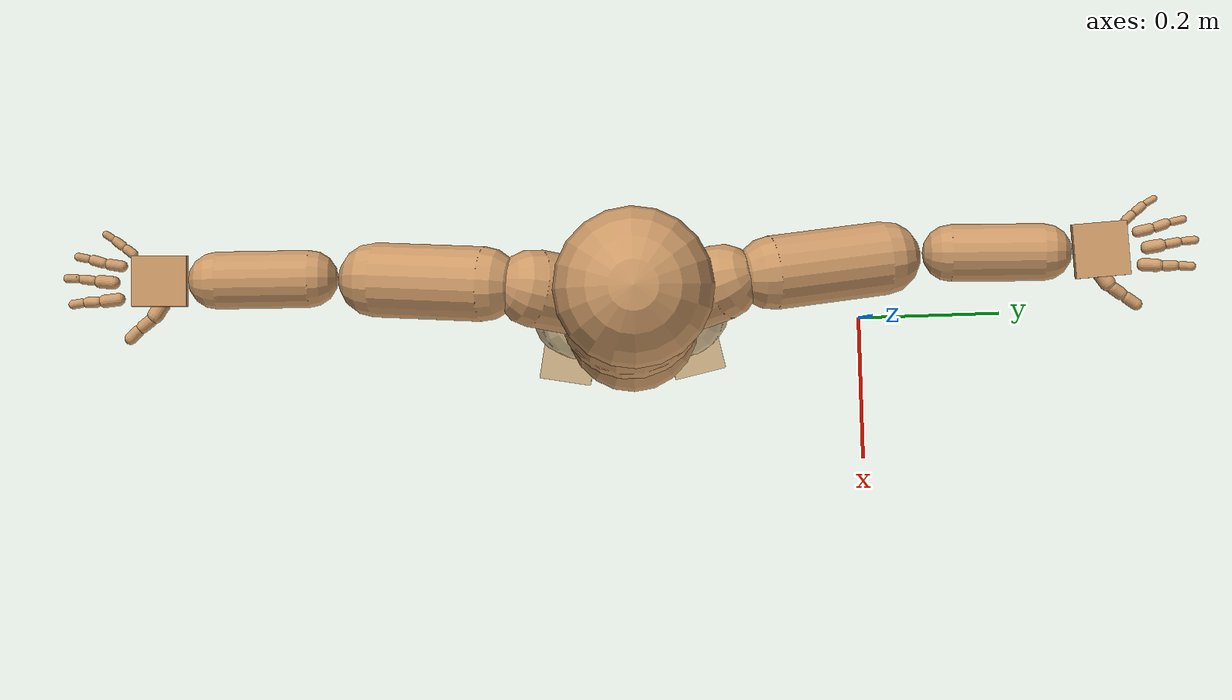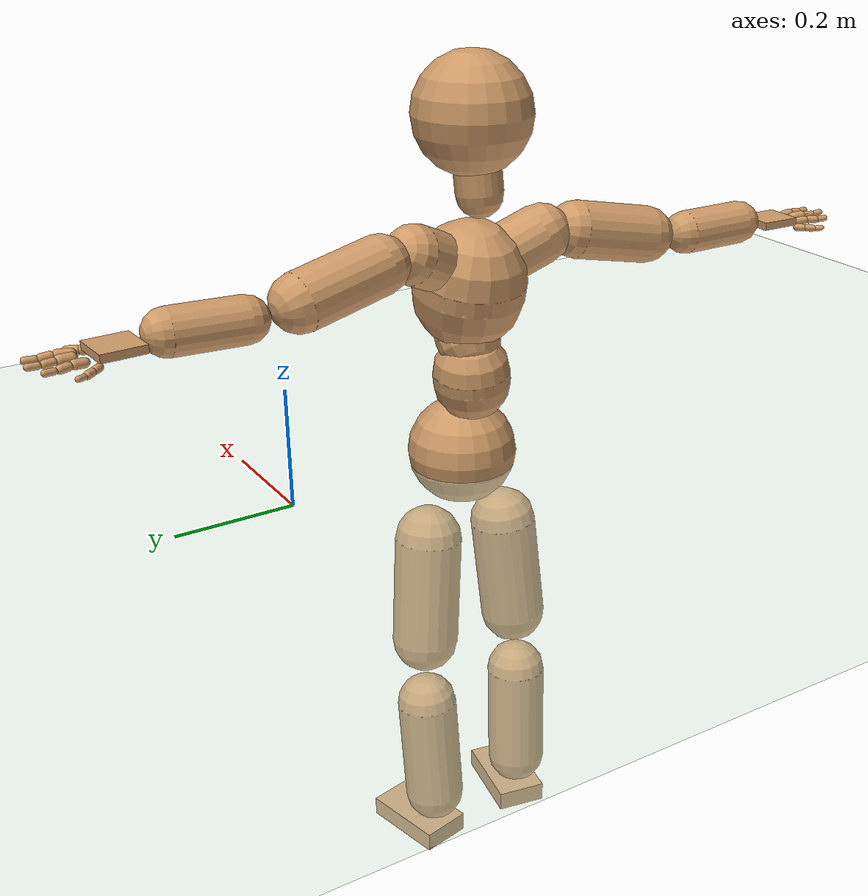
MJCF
<mujoco model="humanoid">
  <compiler coordinate="local" angle="radian"/>
  <default>
    <joint damping="0.0" armature="0.01" stiffness="0.0" limited="true"/>
    <geom conaffinity="1" condim="3" contype="7" margin="0.001" rgba="0.8 0.6 .4 1"/>
  </default>
  <asset>
    <texture type="skybox" builtin="gradient" rgb1=".4 .5 .6" rgb2="0 0 0" width="100" height="100"/>
    <texture builtin="flat" height="1278" mark="cross" markrgb="1 1 1" name="texgeom" random="0.01" rgb1="0.8 0.6 0.4" rgb2="0.8 0.6 0.4" type="cube" width="127"/>
    <texture builtin="checker" height="100" name="texplane" rgb1="0 0 0" rgb2="0.8 0.8 0.8" type="2d" width="100"/>
    <material name="MatPlane" reflectance="0.5" shininess="1" specular="1" texrepeat="60 60" texture="texplane"/>
    <material name="geom" texture="texgeom" texuniform="true"/>
  </asset>
  <worldbody>
    <light cutoff="100" diffuse="1 1 1" dir="-0 0 -1.3" directional="true" exponent="1" pos="0 0 1.3" specular=".1 .1 .1"/>
    <geom conaffinity="1" condim="3" name="floor" pos="0 0 0" rgba="0.8 0.9 0.8 1" size="100 100 .2" type="plane" material="MatPlane"/>
    <body name="Pelvis" pos="0.0006 -0.3213 0.0212">
      <freejoint name="Pelvis"/>
      <geom type="sphere" contype="1" conaffinity="1" density="500" size="0.0931" pos="0.0000 0.0000 0.0000" name="Pelvis"/>
      <body name="L_Hip" pos="-0.0087 0.0716 -0.0823">
        <joint name="L_Hip_x" type="hinge" pos="0 0 0" axis="1 0 0" stiffness="800" damping="80" armature="0.02" range="-180.0000 180.0000"/>
        <joint name="L_Hip_y" type="hinge" pos="0 0 0" axis="0 1 0" stiffness="800" damping="80" armature="0.02" range="-180.0000 180.0000"/>
        <joint name="L_Hip_z" type="hinge" pos="0 0 0" axis="0 0 1" stiffness="800" damping="80" armature="0.02" range="-180.0000 180.0000"/>
        <geom type="capsule" contype="1" conaffinity="1" density="500" fromto="-0.0033 0.0054 -0.0645 -0.0133 0.0216 -0.2578" size="0.0577" name="L_Hip"/>
        <body name="L_Knee" pos="-0.0166 0.027 -0.3223">
          <joint name="L_Knee_x" type="hinge" pos="0 0 0" axis="1 0 0" stiffness="800" damping="80" armature="0.02" range="-180.0000 180.0000"/>
          <joint name="L_Knee_y" type="hinge" pos="0 0 0" axis="0 1 0" stiffness="800" damping="80" armature="0.02" range="-180.0000 180.0000"/>
          <joint name="L_Knee_z" type="hinge" pos="0 0 0" axis="0 0 1" stiffness="800" damping="80" armature="0.02" range="-180.0000 180.0000"/>
          <geom type="capsule" contype="1" conaffinity="1" density="500" fromto="-0.0036 -0.0019 -0.0651 -0.0145 -0.0078 -0.2602" size="0.0527" name="L_Knee"/>
          <body name="L_Ankle" pos="-0.0182 -0.0097 -0.3253">
            <joint name="L_Ankle_x" type="hinge" pos="0 0 0" axis="1 0 0" stiffness="800" damping="80" armature="0.02" range="-180.0000 180.0000"/>
            <joint name="L_Ankle_y" type="hinge" pos="0 0 0" axis="0 1 0" stiffness="800" damping="80" armature="0.02" range="-180.0000 180.0000"/>
            <joint name="L_Ankle_z" type="hinge" pos="0 0 0" axis="0 0 1" stiffness="800" damping="80" armature="0.02" range="-180.0000 180.0000"/>
            <geom type="box" contype="1" conaffinity="1" density="500" pos="0.0485 0.0103 -0.0186" size="0.076 0.0442 0.0177" quat="0.9945 0.0000 0.0000 0.1049" name="L_Ankle"/>
            <body name="L_Toe" pos="0.097 0.0207 -0.0372">
              <joint name="L_Toe_x" type="hinge" pos="0 0 0" axis="1 0 0" stiffness="500" damping="50" armature="0.02" range="-180.0000 180.0000"/>
              <joint name="L_Toe_y" type="hinge" pos="0 0 0" axis="0 1 0" stiffness="500" damping="50" armature="0.02" range="-180.0000 180.0000"/>
              <joint name="L_Toe_z" type="hinge" pos="0 0 0" axis="0 0 1" stiffness="500" damping="50" armature="0.02" range="-180.0000 180.0000"/>
              <geom type="box" contype="1" conaffinity="1" density="500" pos="0.0000 0.0000 0.0202" size="0.0009 0.0022 0.001" quat="0.9937 0.0000 0.0000 0.1124" name="L_Toe"/>
            </body>
          </body>
        </body>
      </body>
      <body name="R_Hip" pos="-0.01 -0.0705 -0.0883">
        <joint name="R_Hip_x" type="hinge" pos="0 0 0" axis="1 0 0" stiffness="800" damping="80" armature="0.02" range="-180.0000 180.0000"/>
        <joint name="R_Hip_y" type="hinge" pos="0 0 0" axis="0 1 0" stiffness="800" damping="80" armature="0.02" range="-180.0000 180.0000"/>
        <joint name="R_Hip_z" type="hinge" pos="0 0 0" axis="0 0 1" stiffness="800" damping="80" armature="0.02" range="-180.0000 180.0000"/>
        <geom type="capsule" contype="1" conaffinity="1" density="500" fromto="-0.0021 -0.0062 -0.0636 -0.0086 -0.0249 -0.2546" size="0.0575" name="R_Hip"/>
        <body name="R_Knee" pos="-0.0107 -0.0312 -0.3182">
          <joint name="R_Knee_x" type="hinge" pos="0 0 0" axis="1 0 0" stiffness="800" damping="80" armature="0.02" range="-180.0000 180.0000"/>
          <joint name="R_Knee_y" type="hinge" pos="0 0 0" axis="0 1 0" stiffness="800" damping="80" armature="0.02" range="-180.0000 180.0000"/>
          <joint name="R_Knee_z" type="hinge" pos="0 0 0" axis="0 0 1" stiffness="800" damping="80" armature="0.02" range="-180.0000 180.0000"/>
          <geom type="capsule" contype="1" conaffinity="1" density="500" fromto="-0.0029 0.0011 -0.0635 -0.0117 0.0044 -0.2539" size="0.0527" name="R_Knee"/>
          <body name="R_Ankle" pos="-0.0146 0.0055 -0.3173">
            <joint name="R_Ankle_x" type="hinge" pos="0 0 0" axis="1 0 0" stiffness="800" damping="80" armature="0.02" range="-180.0000 180.0000"/>
            <joint name="R_Ankle_y" type="hinge" pos="0 0 0" axis="0 1 0" stiffness="800" damping="80" armature="0.02" range="-180.0000 180.0000"/>
            <joint name="R_Ankle_z" type="hinge" pos="0 0 0" axis="0 0 1" stiffness="800" damping="80" armature="0.02" range="-180.0000 180.0000"/>
            <geom type="box" contype="1" conaffinity="1" density="500" pos="0.0455 -0.0085 -0.0203" size="0.076 0.0442 0.0177" quat="0.9957 0.0000 0.0000 -0.0925" name="R_Ankle"/>
            <body name="R_Toe" pos="0.091 -0.0171 -0.0406">
              <joint name="R_Toe_x" type="hinge" pos="0 0 0" axis="1 0 0" stiffness="500" damping="50" armature="0.02" range="-180.0000 180.0000"/>
              <joint name="R_Toe_y" type="hinge" pos="0 0 0" axis="0 1 0" stiffness="500" damping="50" armature="0.02" range="-180.0000 180.0000"/>
              <joint name="R_Toe_z" type="hinge" pos="0 0 0" axis="0 0 1" stiffness="500" damping="50" armature="0.02" range="-180.0000 180.0000"/>
              <geom type="box" contype="1" conaffinity="1" density="500" pos="0.0000 0.0000 0.0219" size="0.0009 0.0022 0.001" quat="0.9968 0.0000 0.0000 -0.0801" name="R_Toe"/>
            </body>
          </body>
        </body>
      </body>
      <body name="Torso" pos="-0.0264 -0.0054 0.0937">
        <joint name="Torso_x" type="hinge" pos="0 0 0" axis="1 0 0" stiffness="1000" damping="100" armature="0.02" range="-180.0000 180.0000"/>
        <joint name="Torso_y" type="hinge" pos="0 0 0" axis="0 1 0" stiffness="1000" damping="100" armature="0.02" range="-180.0000 180.0000"/>
        <joint name="Torso_z" type="hinge" pos="0 0 0" axis="0 0 1" stiffness="1000" damping="100" armature="0.02" range="-180.0000 180.0000"/>
        <geom type="capsule" contype="1" conaffinity="1" density="500" fromto="-0.0070 0.0064 0.0607 -0.0046 0.0042 0.0404" size="0.0645" name="Torso"/>
        <body name="Spine" pos="-0.0116 0.0106 0.1011">
          <joint name="Spine_x" type="hinge" pos="0 0 0" axis="1 0 0" stiffness="1000" damping="100" armature="0.02" range="-180.0000 180.0000"/>
          <joint name="Spine_y" type="hinge" pos="0 0 0" axis="0 1 0" stiffness="1000" damping="100" armature="0.02" range="-180.0000 180.0000"/>
          <joint name="Spine_z" type="hinge" pos="0 0 0" axis="0 0 1" stiffness="1000" damping="100" armature="0.02" range="-180.0000 180.0000"/>
          <geom type="capsule" contype="1" conaffinity="1" density="500" fromto="0.0178 -0.0035 0.0228 0.0119 -0.0024 0.0152" size="0.0548" name="Spine"/>
          <body name="Chest" pos="0.0297 -0.0059 0.0381">
            <joint name="Chest_x" type="hinge" pos="0 0 0" axis="1 0 0" stiffness="1000" damping="100" armature="0.02" range="-180.0000 180.0000"/>
            <joint name="Chest_y" type="hinge" pos="0 0 0" axis="0 1 0" stiffness="1000" damping="100" armature="0.02" range="-180.0000 180.0000"/>
            <joint name="Chest_z" type="hinge" pos="0 0 0" axis="0 0 1" stiffness="1000" damping="100" armature="0.02" range="-180.0000 180.0000"/>
            <geom type="capsule" contype="1" conaffinity="1" density="500" fromto="-0.0176 -0.0017 0.0807 -0.0117 -0.0012 0.0538" size="0.0934" name="Chest"/>
            <body name="Neck" pos="-0.0443 -0.0057 0.1887">
              <joint name="Neck_x" type="hinge" pos="0 0 0" axis="1 0 0" stiffness="500" damping="50" armature="0.02" range="-180.0000 180.0000"/>
              <joint name="Neck_y" type="hinge" pos="0 0 0" axis="0 1 0" stiffness="500" damping="50" armature="0.02" range="-180.0000 180.0000"/>
              <joint name="Neck_z" type="hinge" pos="0 0 0" axis="0 0 1" stiffness="500" damping="50" armature="0.02" range="-180.0000 180.0000"/>
              <geom type="capsule" contype="1" conaffinity="1" density="500" fromto="0.0025 0.0017 0.0304 0.0099 0.0067 0.1216" size="0.0384" name="Neck"/>
              <body name="Head" pos="0.0123 0.0084 0.152">
                <joint name="Head_x" type="hinge" pos="0 0 0" axis="1 0 0" stiffness="500" damping="50" armature="0.02" range="-180.0000 180.0000"/>
                <joint name="Head_y" type="hinge" pos="0 0 0" axis="0 1 0" stiffness="500" damping="50" armature="0.02" range="-180.0000 180.0000"/>
                <joint name="Head_z" type="hinge" pos="0 0 0" axis="0 0 1" stiffness="500" damping="50" armature="0.02" range="-180.0000 180.0000"/>
                <geom type="sphere" contype="1" conaffinity="1" density="500" size="0.0960" pos="0.0000 0.0000 0.0000" name="Head"/>
              </body>
            </body>
            <body name="L_Thorax" pos="-0.019 0.0489 0.1094">
              <joint name="L_Thorax_x" type="hinge" pos="0 0 0" axis="1 0 0" stiffness="500" damping="50" armature="0.02" range="-180.0000 180.0000"/>
              <joint name="L_Thorax_y" type="hinge" pos="0 0 0" axis="0 1 0" stiffness="500" damping="50" armature="0.02" range="-180.0000 180.0000"/>
              <joint name="L_Thorax_z" type="hinge" pos="0 0 0" axis="0 0 1" stiffness="500" damping="50" armature="0.02" range="-180.0000 180.0000"/>
              <geom type="capsule" contype="1" conaffinity="1" density="500" fromto="-0.0051 0.0164 0.0075 -0.0205 0.0654 0.0300" size="0.0483" name="L_Thorax"/>
              <body name="L_Shoulder" pos="-0.0256 0.0818 0.0375">
                <joint name="L_Shoulder_x" type="hinge" pos="0 0 0" axis="1 0 0" stiffness="500" damping="50" armature="0.02" range="-180.0000 180.0000"/>
                <joint name="L_Shoulder_y" type="hinge" pos="0 0 0" axis="0 1 0" stiffness="500" damping="50" armature="0.02" range="-180.0000 180.0000"/>
                <joint name="L_Shoulder_z" type="hinge" pos="0 0 0" axis="0 0 1" stiffness="500" damping="50" armature="0.02" range="-180.0000 180.0000"/>
                <geom type="capsule" contype="1" conaffinity="1" density="500" fromto="-0.0048 0.0478 -0.0098 -0.0193 0.1912 -0.0392" size="0.0471" name="L_Shoulder"/>
                <body name="L_Elbow" pos="-0.0242 0.239 -0.049">
                  <joint name="L_Elbow_x" type="hinge" pos="0 0 0" axis="1 0 0" stiffness="500" damping="50" armature="0.02" range="-720.0000 720.0000"/>
                  <joint name="L_Elbow_y" type="hinge" pos="0 0 0" axis="0 1 0" stiffness="500" damping="50" armature="0.02" range="-720.0000 720.0000"/>
                  <joint name="L_Elbow_z" type="hinge" pos="0 0 0" axis="0 0 1" stiffness="500" damping="50" armature="0.02" range="-720.0000 720.0000"/>
                  <geom type="capsule" contype="1" conaffinity="1" density="500" fromto="0.0010 0.0392 0.0011 0.0039 0.1568 0.0042" size="0.0365" name="L_Elbow"/>
                  <body name="L_Wrist" pos="0.0049 0.196 0.0053">
                    <joint name="L_Wrist_x" type="hinge" pos="0 0 0" axis="1 0 0" stiffness="300" damping="30" armature="0.02" range="-180.0000 180.0000"/>
                    <joint name="L_Wrist_y" type="hinge" pos="0 0 0" axis="0 1 0" stiffness="300" damping="30" armature="0.02" range="-180.0000 180.0000"/>
                    <joint name="L_Wrist_z" type="hinge" pos="0 0 0" axis="0 0 1" stiffness="300" damping="30" armature="0.02" range="-180.0000 180.0000"/>
                    <geom type="box" contype="1" conaffinity="1" density="500" pos="-0.0018 0.0356 -0.0077" size="0.035 0.0347 0.0066" quat="0.7249 0.0000 0.0000 -0.6888" name="L_Wrist"/>
                    <body name="L_Index1" pos="0.0186 0.0845 -0.0135">
                      <joint name="L_Index1_x" type="hinge" pos="0 0 0" axis="1 0 0" stiffness="100" damping="10" armature="0.02" range="-180.0000 180.0000"/>
                      <joint name="L_Index1_y" type="hinge" pos="0 0 0" axis="0 1 0" stiffness="100" damping="10" armature="0.02" range="-180.0000 180.0000"/>
                      <joint name="L_Index1_z" type="hinge" pos="0 0 0" axis="0 0 1" stiffness="100" damping="10" armature="0.02" range="-180.0000 180.0000"/>
                      <geom type="capsule" contype="1" conaffinity="1" density="500" fromto="0.0005 0.0057 0.0005 0.0021 0.0230 0.0019" size="0.0083" name="L_Index1"/>
                      <body name="L_Index2" pos="0.0026 0.0287 0.0024">
                        <joint name="L_Index2_x" type="hinge" pos="0 0 0" axis="1 0 0" stiffness="100" damping="10" armature="0.02" range="-180.0000 180.0000"/>
                        <joint name="L_Index2_y" type="hinge" pos="0 0 0" axis="0 1 0" stiffness="100" damping="10" armature="0.02" range="-180.0000 180.0000"/>
                        <joint name="L_Index2_z" type="hinge" pos="0 0 0" axis="0 0 1" stiffness="100" damping="10" armature="0.02" range="-180.0000 180.0000"/>
                        <geom type="capsule" contype="1" conaffinity="1" density="500" fromto="0.0001 0.0041 -0.0003 0.0003 0.0163 -0.0011" size="0.0069" name="L_Index2"/>
                        <body name="L_Index3" pos="0.0004 0.0204 -0.0014">
                          <joint name="L_Index3_x" type="hinge" pos="0 0 0" axis="1 0 0" stiffness="100" damping="10" armature="0.02" range="-180.0000 180.0000"/>
                          <joint name="L_Index3_y" type="hinge" pos="0 0 0" axis="0 1 0" stiffness="100" damping="10" armature="0.02" range="-180.0000 180.0000"/>
                          <joint name="L_Index3_z" type="hinge" pos="0 0 0" axis="0 0 1" stiffness="100" damping="10" armature="0.02" range="-180.0000 180.0000"/>
                          <geom type="capsule" contype="1" conaffinity="1" density="500" fromto="0.0005 0.0045 0.0001 0.0019 0.0179 0.0005" size="0.0057" name="L_Index3"/>
                        </body>
                      </body>
                    </body>
                    <body name="L_Middle1" pos="-0.0018 0.0903 -0.0113">
                      <joint name="L_Middle1_x" type="hinge" pos="0 0 0" axis="1 0 0" stiffness="100" damping="10" armature="0.02" range="-180.0000 180.0000"/>
                      <joint name="L_Middle1_y" type="hinge" pos="0 0 0" axis="0 1 0" stiffness="100" damping="10" armature="0.02" range="-180.0000 180.0000"/>
                      <joint name="L_Middle1_z" type="hinge" pos="0 0 0" axis="0 0 1" stiffness="100" damping="10" armature="0.02" range="-180.0000 180.0000"/>
                      <geom type="capsule" contype="1" conaffinity="1" density="500" fromto="-0.0007 0.0054 0.0002 -0.0028 0.0216 0.0010" size="0.0084" name="L_Middle1"/>
                      <body name="L_Middle2" pos="-0.0036 0.027 0.0012">
                        <joint name="L_Middle2_x" type="hinge" pos="0 0 0" axis="1 0 0" stiffness="100" damping="10" armature="0.02" range="-180.0000 180.0000"/>
                        <joint name="L_Middle2_y" type="hinge" pos="0 0 0" axis="0 1 0" stiffness="100" damping="10" armature="0.02" range="-180.0000 180.0000"/>
                        <joint name="L_Middle2_z" type="hinge" pos="0 0 0" axis="0 0 1" stiffness="100" damping="10" armature="0.02" range="-180.0000 180.0000"/>
                        <geom type="capsule" contype="1" conaffinity="1" density="500" fromto="-0.0007 0.0042 -0.0001 -0.0027 0.0168 -0.0004" size="0.0062" name="L_Middle2"/>
                        <body name="L_Middle3" pos="-0.0034 0.021 -0.0005">
                          <joint name="L_Middle3_x" type="hinge" pos="0 0 0" axis="1 0 0" stiffness="100" damping="10" armature="0.02" range="-180.0000 180.0000"/>
                          <joint name="L_Middle3_y" type="hinge" pos="0 0 0" axis="0 1 0" stiffness="100" damping="10" armature="0.02" range="-180.0000 180.0000"/>
                          <joint name="L_Middle3_z" type="hinge" pos="0 0 0" axis="0 0 1" stiffness="100" damping="10" armature="0.02" range="-180.0000 180.0000"/>
                          <geom type="capsule" contype="1" conaffinity="1" density="500" fromto="-0.0003 0.0046 0.0003 -0.0011 0.0184 0.0012" size="0.0053" name="L_Middle3"/>
                        </body>
                      </body>
                    </body>
                    <body name="L_Pinky1" pos="-0.0365 0.0682 -0.0181">
                      <joint name="L_Pinky1_x" type="hinge" pos="0 0 0" axis="1 0 0" stiffness="100" damping="10" armature="0.02" range="-180.0000 180.0000"/>
                      <joint name="L_Pinky1_y" type="hinge" pos="0 0 0" axis="0 1 0" stiffness="100" damping="10" armature="0.02" range="-180.0000 180.0000"/>
                      <joint name="L_Pinky1_z" type="hinge" pos="0 0 0" axis="0 0 1" stiffness="100" damping="10" armature="0.02" range="-180.0000 180.0000"/>
                      <geom type="capsule" contype="1" conaffinity="1" density="500" fromto="-0.0022 0.0026 -0.0001 -0.0087 0.0106 -0.0003" size="0.0061" name="L_Pinky1"/>
                      <body name="L_Pinky2" pos="-0.0109 0.0132 -0.0003">
                        <joint name="L_Pinky2_x" type="hinge" pos="0 0 0" axis="1 0 0" stiffness="100" damping="10" armature="0.02" range="-180.0000 180.0000"/>
                        <joint name="L_Pinky2_y" type="hinge" pos="0 0 0" axis="0 1 0" stiffness="100" damping="10" armature="0.02" range="-180.0000 180.0000"/>
                        <joint name="L_Pinky2_z" type="hinge" pos="0 0 0" axis="0 0 1" stiffness="100" damping="10" armature="0.02" range="-180.0000 180.0000"/>
                        <geom type="capsule" contype="1" conaffinity="1" density="500" fromto="-0.0021 0.0027 -0.0002 -0.0085 0.0109 -0.0006" size="0.006" name="L_Pinky2"/>
                        <body name="L_Pinky3" pos="-0.0106 0.0136 -0.0008">
                          <joint name="L_Pinky3_x" type="hinge" pos="0 0 0" axis="1 0 0" stiffness="100" damping="10" armature="0.02" range="-180.0000 180.0000"/>
                          <joint name="L_Pinky3_y" type="hinge" pos="0 0 0" axis="0 1 0" stiffness="100" damping="10" armature="0.02" range="-180.0000 180.0000"/>
                          <joint name="L_Pinky3_z" type="hinge" pos="0 0 0" axis="0 0 1" stiffness="100" damping="10" armature="0.02" range="-180.0000 180.0000"/>
                          <geom type="capsule" contype="1" conaffinity="1" density="500" fromto="-0.0017 0.0031 0.0002 -0.0069 0.0125 0.0010" size="0.0045" name="L_Pinky3"/>
                        </body>
                      </body>
                    </body>
                    <body name="L_Ring1" pos="-0.0222 0.0797 -0.0135">
                      <joint name="L_Ring1_x" type="hinge" pos="0 0 0" axis="1 0 0" stiffness="100" damping="10" armature="0.02" range="-180.0000 180.0000"/>
                      <joint name="L_Ring1_y" type="hinge" pos="0 0 0" axis="0 1 0" stiffness="100" damping="10" armature="0.02" range="-180.0000 180.0000"/>
                      <joint name="L_Ring1_z" type="hinge" pos="0 0 0" axis="0 0 1" stiffness="100" damping="10" armature="0.02" range="-180.0000 180.0000"/>
                      <geom type="capsule" contype="1" conaffinity="1" density="500" fromto="-0.0010 0.0049 0.0003 -0.0038 0.0197 0.0013" size="0.0073" name="L_Ring1"/>
                      <body name="L_Ring2" pos="-0.0048 0.0246 0.0016">
                        <joint name="L_Ring2_x" type="hinge" pos="0 0 0" axis="1 0 0" stiffness="100" damping="10" armature="0.02" range="-180.0000 180.0000"/>
                        <joint name="L_Ring2_y" type="hinge" pos="0 0 0" axis="0 1 0" stiffness="100" damping="10" armature="0.02" range="-180.0000 180.0000"/>
                        <joint name="L_Ring2_z" type="hinge" pos="0 0 0" axis="0 0 1" stiffness="100" damping="10" armature="0.02" range="-180.0000 180.0000"/>
                        <geom type="capsule" contype="1" conaffinity="1" density="500" fromto="-0.0013 0.0041 -0.0002 -0.0052 0.0162 -0.0007" size="0.0067" name="L_Ring2"/>
                        <body name="L_Ring3" pos="-0.0064 0.0203 -0.0009">
                          <joint name="L_Ring3_x" type="hinge" pos="0 0 0" axis="1 0 0" stiffness="100" damping="10" armature="0.02" range="-180.0000 180.0000"/>
                          <joint name="L_Ring3_y" type="hinge" pos="0 0 0" axis="0 1 0" stiffness="100" damping="10" armature="0.02" range="-180.0000 180.0000"/>
                          <joint name="L_Ring3_z" type="hinge" pos="0 0 0" axis="0 0 1" stiffness="100" damping="10" armature="0.02" range="-180.0000 180.0000"/>
                          <geom type="capsule" contype="1" conaffinity="1" density="500" fromto="-0.0009 0.0045 0.0002 -0.0036 0.0178 0.0009" size="0.0051" name="L_Ring3"/>
                        </body>
                      </body>
                    </body>
                    <body name="L_Thumb1" pos="0.0237 0.0331 -0.0204">
                      <joint name="L_Thumb1_x" type="hinge" pos="0 0 0" axis="1 0 0" stiffness="100" damping="10" armature="0.02" range="-180.0000 180.0000"/>
                      <joint name="L_Thumb1_y" type="hinge" pos="0 0 0" axis="0 1 0" stiffness="100" damping="10" armature="0.02" range="-180.0000 180.0000"/>
                      <joint name="L_Thumb1_z" type="hinge" pos="0 0 0" axis="0 0 1" stiffness="100" damping="10" armature="0.02" range="-180.0000 180.0000"/>
                      <geom type="capsule" contype="1" conaffinity="1" density="500" fromto="0.0043 0.0030 0.0002 0.0171 0.0119 0.0009" size="0.0105" name="L_Thumb1"/>
                      <body name="L_Thumb2" pos="0.0213 0.0148 0.0011">
                        <joint name="L_Thumb2_x" type="hinge" pos="0 0 0" axis="1 0 0" stiffness="100" damping="10" armature="0.02" range="-180.0000 180.0000"/>
                        <joint name="L_Thumb2_y" type="hinge" pos="0 0 0" axis="0 1 0" stiffness="100" damping="10" armature="0.02" range="-180.0000 180.0000"/>
                        <joint name="L_Thumb2_z" type="hinge" pos="0 0 0" axis="0 0 1" stiffness="100" damping="10" armature="0.02" range="-180.0000 180.0000"/>
                        <geom type="capsule" contype="1" conaffinity="1" density="500" fromto="0.0025 0.0036 -0.0010 0.0101 0.0145 -0.0040" size="0.0083" name="L_Thumb2"/>
                        <body name="L_Thumb3" pos="0.0126 0.0182 -0.005">
                          <joint name="L_Thumb3_x" type="hinge" pos="0 0 0" axis="1 0 0" stiffness="100" damping="10" armature="0.02" range="-180.0000 180.0000"/>
                          <joint name="L_Thumb3_y" type="hinge" pos="0 0 0" axis="0 1 0" stiffness="100" damping="10" armature="0.02" range="-180.0000 180.0000"/>
                          <joint name="L_Thumb3_z" type="hinge" pos="0 0 0" axis="0 0 1" stiffness="100" damping="10" armature="0.02" range="-180.0000 180.0000"/>
                          <geom type="capsule" contype="1" conaffinity="1" density="500" fromto="0.0029 0.0040 -0.0006 0.0117 0.0161 -0.0024" size="0.0078" name="L_Thumb3"/>
                        </body>
                      </body>
                    </body>
                  </body>
                </body>
              </body>
            </body>
            <body name="R_Thorax" pos="-0.0246 -0.0518 0.1055">
              <joint name="R_Thorax_x" type="hinge" pos="0 0 0" axis="1 0 0" stiffness="500" damping="50" armature="0.02" range="-180.0000 180.0000"/>
              <joint name="R_Thorax_y" type="hinge" pos="0 0 0" axis="0 1 0" stiffness="500" damping="50" armature="0.02" range="-180.0000 180.0000"/>
              <joint name="R_Thorax_z" type="hinge" pos="0 0 0" axis="0 0 1" stiffness="500" damping="50" armature="0.02" range="-180.0000 180.0000"/>
              <geom type="capsule" contype="1" conaffinity="1" density="500" fromto="-0.0038 -0.0176 0.0080 -0.0154 -0.0704 0.0318" size="0.0495" name="R_Thorax"/>
              <body name="R_Shoulder" pos="-0.0192 -0.088 0.0398">
                <joint name="R_Shoulder_x" type="hinge" pos="0 0 0" axis="1 0 0" stiffness="500" damping="50" armature="0.02" range="-180.0000 180.0000"/>
                <joint name="R_Shoulder_y" type="hinge" pos="0 0 0" axis="0 1 0" stiffness="500" damping="50" armature="0.02" range="-180.0000 180.0000"/>
                <joint name="R_Shoulder_z" type="hinge" pos="0 0 0" axis="0 0 1" stiffness="500" damping="50" armature="0.02" range="-180.0000 180.0000"/>
                <geom type="capsule" contype="1" conaffinity="1" density="500" fromto="-0.0037 -0.0460 -0.0089 -0.0146 -0.1839 -0.0356" size="0.0476" name="R_Shoulder"/>
                <body name="R_Elbow" pos="-0.0183 -0.2298 -0.0445">
                  <joint name="R_Elbow_x" type="hinge" pos="0 0 0" axis="1 0 0" stiffness="500" damping="50" armature="0.02" range="-720.0000 720.0000"/>
                  <joint name="R_Elbow_y" type="hinge" pos="0 0 0" axis="0 1 0" stiffness="500" damping="50" armature="0.02" range="-720.0000 720.0000"/>
                  <joint name="R_Elbow_z" type="hinge" pos="0 0 0" axis="0 0 1" stiffness="500" damping="50" armature="0.02" range="-720.0000 720.0000"/>
                  <geom type="capsule" contype="1" conaffinity="1" density="500" fromto="-0.0006 -0.0393 0.0003 -0.0025 -0.1573 0.0011" size="0.0366" name="R_Elbow"/>
                  <body name="R_Wrist" pos="-0.0032 -0.1966 0.0014">
                    <joint name="R_Wrist_x" type="hinge" pos="0 0 0" axis="1 0 0" stiffness="300" damping="30" armature="0.02" range="-180.0000 180.0000"/>
                    <joint name="R_Wrist_y" type="hinge" pos="0 0 0" axis="0 1 0" stiffness="300" damping="30" armature="0.02" range="-180.0000 180.0000"/>
                    <joint name="R_Wrist_z" type="hinge" pos="0 0 0" axis="0 0 1" stiffness="300" damping="30" armature="0.02" range="-180.0000 180.0000"/>
                    <geom type="box" contype="1" conaffinity="1" density="500" pos="-0.0012 -0.0352 -0.0072" size="0.035 0.0324 0.0068" quat="0.7187 0.0000 0.0000 0.6953" name="R_Wrist"/>
                    <body name="R_Index1" pos="0.0199 -0.0837 -0.0126">
                      <joint name="R_Index1_x" type="hinge" pos="0 0 0" axis="1 0 0" stiffness="100" damping="10" armature="0.02" range="-180.0000 180.0000"/>
                      <joint name="R_Index1_y" type="hinge" pos="0 0 0" axis="0 1 0" stiffness="100" damping="10" armature="0.02" range="-180.0000 180.0000"/>
                      <joint name="R_Index1_z" type="hinge" pos="0 0 0" axis="0 0 1" stiffness="100" damping="10" armature="0.02" range="-180.0000 180.0000"/>
                      <geom type="capsule" contype="1" conaffinity="1" density="500" fromto="0.0005 -0.0057 0.0005 0.0021 -0.0230 0.0019" size="0.0083" name="R_Index1"/>
                      <body name="R_Index2" pos="0.0026 -0.0287 0.0024">
                        <joint name="R_Index2_x" type="hinge" pos="0 0 0" axis="1 0 0" stiffness="100" damping="10" armature="0.02" range="-180.0000 180.0000"/>
                        <joint name="R_Index2_y" type="hinge" pos="0 0 0" axis="0 1 0" stiffness="100" damping="10" armature="0.02" range="-180.0000 180.0000"/>
                        <joint name="R_Index2_z" type="hinge" pos="0 0 0" axis="0 0 1" stiffness="100" damping="10" armature="0.02" range="-180.0000 180.0000"/>
                        <geom type="capsule" contype="1" conaffinity="1" density="500" fromto="0.0001 -0.0041 -0.0003 0.0003 -0.0163 -0.0011" size="0.0069" name="R_Index2"/>
                        <body name="R_Index3" pos="0.0004 -0.0204 -0.0014">
                          <joint name="R_Index3_x" type="hinge" pos="0 0 0" axis="1 0 0" stiffness="100" damping="10" armature="0.02" range="-180.0000 180.0000"/>
                          <joint name="R_Index3_y" type="hinge" pos="0 0 0" axis="0 1 0" stiffness="100" damping="10" armature="0.02" range="-180.0000 180.0000"/>
                          <joint name="R_Index3_z" type="hinge" pos="0 0 0" axis="0 0 1" stiffness="100" damping="10" armature="0.02" range="-180.0000 180.0000"/>
                          <geom type="capsule" contype="1" conaffinity="1" density="500" fromto="0.0005 -0.0037 0.0001 0.0019 -0.0147 0.0005" size="0.0059" name="R_Index3"/>
                        </body>
                      </body>
                    </body>
                    <body name="R_Middle1" pos="-0.0005 -0.0895 -0.0104">
                      <joint name="R_Middle1_x" type="hinge" pos="0 0 0" axis="1 0 0" stiffness="100" damping="10" armature="0.02" range="-180.0000 180.0000"/>
                      <joint name="R_Middle1_y" type="hinge" pos="0 0 0" axis="0 1 0" stiffness="100" damping="10" armature="0.02" range="-180.0000 180.0000"/>
                      <joint name="R_Middle1_z" type="hinge" pos="0 0 0" axis="0 0 1" stiffness="100" damping="10" armature="0.02" range="-180.0000 180.0000"/>
                      <geom type="capsule" contype="1" conaffinity="1" density="500" fromto="-0.0007 -0.0054 0.0002 -0.0028 -0.0216 0.0010" size="0.0084" name="R_Middle1"/>
                      <body name="R_Middle2" pos="-0.0036 -0.027 0.0012">
                        <joint name="R_Middle2_x" type="hinge" pos="0 0 0" axis="1 0 0" stiffness="100" damping="10" armature="0.02" range="-180.0000 180.0000"/>
                        <joint name="R_Middle2_y" type="hinge" pos="0 0 0" axis="0 1 0" stiffness="100" damping="10" armature="0.02" range="-180.0000 180.0000"/>
                        <joint name="R_Middle2_z" type="hinge" pos="0 0 0" axis="0 0 1" stiffness="100" damping="10" armature="0.02" range="-180.0000 180.0000"/>
                        <geom type="capsule" contype="1" conaffinity="1" density="500" fromto="-0.0007 -0.0042 -0.0001 -0.0027 -0.0168 -0.0004" size="0.0062" name="R_Middle2"/>
                        <body name="R_Middle3" pos="-0.0034 -0.021 -0.0005">
                          <joint name="R_Middle3_x" type="hinge" pos="0 0 0" axis="1 0 0" stiffness="100" damping="10" armature="0.02" range="-180.0000 180.0000"/>
                          <joint name="R_Middle3_y" type="hinge" pos="0 0 0" axis="0 1 0" stiffness="100" damping="10" armature="0.02" range="-180.0000 180.0000"/>
                          <joint name="R_Middle3_z" type="hinge" pos="0 0 0" axis="0 0 1" stiffness="100" damping="10" armature="0.02" range="-180.0000 180.0000"/>
                          <geom type="capsule" contype="1" conaffinity="1" density="500" fromto="-0.0003 -0.0038 0.0003 -0.0011 -0.0152 0.0012" size="0.0056" name="R_Middle3"/>
                        </body>
                      </body>
                    </body>
                    <body name="R_Pinky1" pos="-0.0352 -0.0674 -0.0172">
                      <joint name="R_Pinky1_x" type="hinge" pos="0 0 0" axis="1 0 0" stiffness="100" damping="10" armature="0.02" range="-180.0000 180.0000"/>
                      <joint name="R_Pinky1_y" type="hinge" pos="0 0 0" axis="0 1 0" stiffness="100" damping="10" armature="0.02" range="-180.0000 180.0000"/>
                      <joint name="R_Pinky1_z" type="hinge" pos="0 0 0" axis="0 0 1" stiffness="100" damping="10" armature="0.02" range="-180.0000 180.0000"/>
                      <geom type="capsule" contype="1" conaffinity="1" density="500" fromto="-0.0022 -0.0026 -0.0001 -0.0087 -0.0106 -0.0003" size="0.0061" name="R_Pinky1"/>
                      <body name="R_Pinky2" pos="-0.0109 -0.0132 -0.0003">
                        <joint name="R_Pinky2_x" type="hinge" pos="0 0 0" axis="1 0 0" stiffness="100" damping="10" armature="0.02" range="-180.0000 180.0000"/>
                        <joint name="R_Pinky2_y" type="hinge" pos="0 0 0" axis="0 1 0" stiffness="100" damping="10" armature="0.02" range="-180.0000 180.0000"/>
                        <joint name="R_Pinky2_z" type="hinge" pos="0 0 0" axis="0 0 1" stiffness="100" damping="10" armature="0.02" range="-180.0000 180.0000"/>
                        <geom type="capsule" contype="1" conaffinity="1" density="500" fromto="-0.0021 -0.0027 -0.0002 -0.0085 -0.0109 -0.0006" size="0.006" name="R_Pinky2"/>
                        <body name="R_Pinky3" pos="-0.0106 -0.0136 -0.0008">
                          <joint name="R_Pinky3_x" type="hinge" pos="0 0 0" axis="1 0 0" stiffness="100" damping="10" armature="0.02" range="-180.0000 180.0000"/>
                          <joint name="R_Pinky3_y" type="hinge" pos="0 0 0" axis="0 1 0" stiffness="100" damping="10" armature="0.02" range="-180.0000 180.0000"/>
                          <joint name="R_Pinky3_z" type="hinge" pos="0 0 0" axis="0 0 1" stiffness="100" damping="10" armature="0.02" range="-180.0000 180.0000"/>
                          <geom type="capsule" contype="1" conaffinity="1" density="500" fromto="-0.0017 -0.0023 0.0002 -0.0069 -0.0093 0.0010" size="0.0048" name="R_Pinky3"/>
                        </body>
                      </body>
                    </body>
                    <body name="R_Ring1" pos="-0.0209 -0.0789 -0.0126">
                      <joint name="R_Ring1_x" type="hinge" pos="0 0 0" axis="1 0 0" stiffness="100" damping="10" armature="0.02" range="-180.0000 180.0000"/>
                      <joint name="R_Ring1_y" type="hinge" pos="0 0 0" axis="0 1 0" stiffness="100" damping="10" armature="0.02" range="-180.0000 180.0000"/>
                      <joint name="R_Ring1_z" type="hinge" pos="0 0 0" axis="0 0 1" stiffness="100" damping="10" armature="0.02" range="-180.0000 180.0000"/>
                      <geom type="capsule" contype="1" conaffinity="1" density="500" fromto="-0.0010 -0.0049 0.0003 -0.0038 -0.0197 0.0013" size="0.0073" name="R_Ring1"/>
                      <body name="R_Ring2" pos="-0.0048 -0.0246 0.0016">
                        <joint name="R_Ring2_x" type="hinge" pos="0 0 0" axis="1 0 0" stiffness="100" damping="10" armature="0.02" range="-180.0000 180.0000"/>
                        <joint name="R_Ring2_y" type="hinge" pos="0 0 0" axis="0 1 0" stiffness="100" damping="10" armature="0.02" range="-180.0000 180.0000"/>
                        <joint name="R_Ring2_z" type="hinge" pos="0 0 0" axis="0 0 1" stiffness="100" damping="10" armature="0.02" range="-180.0000 180.0000"/>
                        <geom type="capsule" contype="1" conaffinity="1" density="500" fromto="-0.0013 -0.0041 -0.0002 -0.0052 -0.0162 -0.0007" size="0.0067" name="R_Ring2"/>
                        <body name="R_Ring3" pos="-0.0064 -0.0203 -0.0009">
                          <joint name="R_Ring3_x" type="hinge" pos="0 0 0" axis="1 0 0" stiffness="100" damping="10" armature="0.02" range="-180.0000 180.0000"/>
                          <joint name="R_Ring3_y" type="hinge" pos="0 0 0" axis="0 1 0" stiffness="100" damping="10" armature="0.02" range="-180.0000 180.0000"/>
                          <joint name="R_Ring3_z" type="hinge" pos="0 0 0" axis="0 0 1" stiffness="100" damping="10" armature="0.02" range="-180.0000 180.0000"/>
                          <geom type="capsule" contype="1" conaffinity="1" density="500" fromto="-0.0009 -0.0037 0.0002 -0.0036 -0.0146 0.0009" size="0.0054" name="R_Ring3"/>
                        </body>
                      </body>
                    </body>
                    <body name="R_Thumb1" pos="0.025 -0.0323 -0.0195">
                      <joint name="R_Thumb1_x" type="hinge" pos="0 0 0" axis="1 0 0" stiffness="100" damping="10" armature="0.02" range="-180.0000 180.0000"/>
                      <joint name="R_Thumb1_y" type="hinge" pos="0 0 0" axis="0 1 0" stiffness="100" damping="10" armature="0.02" range="-180.0000 180.0000"/>
                      <joint name="R_Thumb1_z" type="hinge" pos="0 0 0" axis="0 0 1" stiffness="100" damping="10" armature="0.02" range="-180.0000 180.0000"/>
                      <geom type="capsule" contype="1" conaffinity="1" density="500" fromto="0.0043 -0.0030 0.0002 0.0171 -0.0119 0.0009" size="0.0105" name="R_Thumb1"/>
                      <body name="R_Thumb2" pos="0.0213 -0.0148 0.0011">
                        <joint name="R_Thumb2_x" type="hinge" pos="0 0 0" axis="1 0 0" stiffness="100" damping="10" armature="0.02" range="-180.0000 180.0000"/>
                        <joint name="R_Thumb2_y" type="hinge" pos="0 0 0" axis="0 1 0" stiffness="100" damping="10" armature="0.02" range="-180.0000 180.0000"/>
                        <joint name="R_Thumb2_z" type="hinge" pos="0 0 0" axis="0 0 1" stiffness="100" damping="10" armature="0.02" range="-180.0000 180.0000"/>
                        <geom type="capsule" contype="1" conaffinity="1" density="500" fromto="0.0025 -0.0036 -0.0010 0.0101 -0.0145 -0.0040" size="0.0083" name="R_Thumb2"/>
                        <body name="R_Thumb3" pos="0.0126 -0.0182 -0.005">
                          <joint name="R_Thumb3_x" type="hinge" pos="0 0 0" axis="1 0 0" stiffness="100" damping="10" armature="0.02" range="-180.0000 180.0000"/>
                          <joint name="R_Thumb3_y" type="hinge" pos="0 0 0" axis="0 1 0" stiffness="100" damping="10" armature="0.02" range="-180.0000 180.0000"/>
                          <joint name="R_Thumb3_z" type="hinge" pos="0 0 0" axis="0 0 1" stiffness="100" damping="10" armature="0.02" range="-180.0000 180.0000"/>
                          <geom type="capsule" contype="1" conaffinity="1" density="500" fromto="0.0029 -0.0032 -0.0006 0.0117 -0.0129 -0.0024" size="0.008" name="R_Thumb3"/>
                        </body>
                      </body>
                    </body>
                  </body>
                </body>
              </body>
            </body>
          </body>
        </body>
      </body>
    </body>
  </worldbody>
  <actuator>
    <motor name="L_Hip_x" joint="L_Hip_x" gear="500"/>
    <motor name="L_Hip_y" joint="L_Hip_y" gear="500"/>
    <motor name="L_Hip_z" joint="L_Hip_z" gear="500"/>
    <motor name="L_Knee_x" joint="L_Knee_x" gear="500"/>
    <motor name="L_Knee_y" joint="L_Knee_y" gear="500"/>
    <motor name="L_Knee_z" joint="L_Knee_z" gear="500"/>
    <motor name="L_Ankle_x" joint="L_Ankle_x" gear="500"/>
    <motor name="L_Ankle_y" joint="L_Ankle_y" gear="500"/>
    <motor name="L_Ankle_z" joint="L_Ankle_z" gear="500"/>
    <motor name="L_Toe_x" joint="L_Toe_x" gear="500"/>
    <motor name="L_Toe_y" joint="L_Toe_y" gear="500"/>
    <motor name="L_Toe_z" joint="L_Toe_z" gear="500"/>
    <motor name="R_Hip_x" joint="R_Hip_x" gear="500"/>
    <motor name="R_Hip_y" joint="R_Hip_y" gear="500"/>
    <motor name="R_Hip_z" joint="R_Hip_z" gear="500"/>
    <motor name="R_Knee_x" joint="R_Knee_x" gear="500"/>
    <motor name="R_Knee_y" joint="R_Knee_y" gear="500"/>
    <motor name="R_Knee_z" joint="R_Knee_z" gear="500"/>
    <motor name="R_Ankle_x" joint="R_Ankle_x" gear="500"/>
    <motor name="R_Ankle_y" joint="R_Ankle_y" gear="500"/>
    <motor name="R_Ankle_z" joint="R_Ankle_z" gear="500"/>
    <motor name="R_Toe_x" joint="R_Toe_x" gear="500"/>
    <motor name="R_Toe_y" joint="R_Toe_y" gear="500"/>
    <motor name="R_Toe_z" joint="R_Toe_z" gear="500"/>
    <motor name="Torso_x" joint="Torso_x" gear="500"/>
    <motor name="Torso_y" joint="Torso_y" gear="500"/>
    <motor name="Torso_z" joint="Torso_z" gear="500"/>
    <motor name="Spine_x" joint="Spine_x" gear="500"/>
    <motor name="Spine_y" joint="Spine_y" gear="500"/>
    <motor name="Spine_z" joint="Spine_z" gear="500"/>
    <motor name="Chest_x" joint="Chest_x" gear="500"/>
    <motor name="Chest_y" joint="Chest_y" gear="500"/>
    <motor name="Chest_z" joint="Chest_z" gear="500"/>
    <motor name="Neck_x" joint="Neck_x" gear="500"/>
    <motor name="Neck_y" joint="Neck_y" gear="500"/>
    <motor name="Neck_z" joint="Neck_z" gear="500"/>
    <motor name="Head_x" joint="Head_x" gear="500"/>
    <motor name="Head_y" joint="Head_y" gear="500"/>
    <motor name="Head_z" joint="Head_z" gear="500"/>
    <motor name="L_Thorax_x" joint="L_Thorax_x" gear="500"/>
    <motor name="L_Thorax_y" joint="L_Thorax_y" gear="500"/>
    <motor name="L_Thorax_z" joint="L_Thorax_z" gear="500"/>
    <motor name="L_Shoulder_x" joint="L_Shoulder_x" gear="500"/>
    <motor name="L_Shoulder_y" joint="L_Shoulder_y" gear="500"/>
    <motor name="L_Shoulder_z" joint="L_Shoulder_z" gear="500"/>
    <motor name="L_Elbow_x" joint="L_Elbow_x" gear="500"/>
    <motor name="L_Elbow_y" joint="L_Elbow_y" gear="500"/>
    <motor name="L_Elbow_z" joint="L_Elbow_z" gear="500"/>
    <motor name="L_Wrist_x" joint="L_Wrist_x" gear="500"/>
    <motor name="L_Wrist_y" joint="L_Wrist_y" gear="500"/>
    <motor name="L_Wrist_z" joint="L_Wrist_z" gear="500"/>
    <motor name="L_Index1_x" joint="L_Index1_x" gear="500"/>
    <motor name="L_Index1_y" joint="L_Index1_y" gear="500"/>
    <motor name="L_Index1_z" joint="L_Index1_z" gear="500"/>
    <motor name="L_Index2_x" joint="L_Index2_x" gear="500"/>
    <motor name="L_Index2_y" joint="L_Index2_y" gear="500"/>
    <motor name="L_Index2_z" joint="L_Index2_z" gear="500"/>
    <motor name="L_Index3_x" joint="L_Index3_x" gear="500"/>
    <motor name="L_Index3_y" joint="L_Index3_y" gear="500"/>
    <motor name="L_Index3_z" joint="L_Index3_z" gear="500"/>
    <motor name="L_Middle1_x" joint="L_Middle1_x" gear="500"/>
    <motor name="L_Middle1_y" joint="L_Middle1_y" gear="500"/>
    <motor name="L_Middle1_z" joint="L_Middle1_z" gear="500"/>
    <motor name="L_Middle2_x" joint="L_Middle2_x" gear="500"/>
    <motor name="L_Middle2_y" joint="L_Middle2_y" gear="500"/>
    <motor name="L_Middle2_z" joint="L_Middle2_z" gear="500"/>
    <motor name="L_Middle3_x" joint="L_Middle3_x" gear="500"/>
    <motor name="L_Middle3_y" joint="L_Middle3_y" gear="500"/>
    <motor name="L_Middle3_z" joint="L_Middle3_z" gear="500"/>
    <motor name="L_Pinky1_x" joint="L_Pinky1_x" gear="500"/>
    <motor name="L_Pinky1_y" joint="L_Pinky1_y" gear="500"/>
    <motor name="L_Pinky1_z" joint="L_Pinky1_z" gear="500"/>
    <motor name="L_Pinky2_x" joint="L_Pinky2_x" gear="500"/>
    <motor name="L_Pinky2_y" joint="L_Pinky2_y" gear="500"/>
    <motor name="L_Pinky2_z" joint="L_Pinky2_z" gear="500"/>
    <motor name="L_Pinky3_x" joint="L_Pinky3_x" gear="500"/>
    <motor name="L_Pinky3_y" joint="L_Pinky3_y" gear="500"/>
    <motor name="L_Pinky3_z" joint="L_Pinky3_z" gear="500"/>
    <motor name="L_Ring1_x" joint="L_Ring1_x" gear="500"/>
    <motor name="L_Ring1_y" joint="L_Ring1_y" gear="500"/>
    <motor name="L_Ring1_z" joint="L_Ring1_z" gear="500"/>
    <motor name="L_Ring2_x" joint="L_Ring2_x" gear="500"/>
    <motor name="L_Ring2_y" joint="L_Ring2_y" gear="500"/>
    <motor name="L_Ring2_z" joint="L_Ring2_z" gear="500"/>
    <motor name="L_Ring3_x" joint="L_Ring3_x" gear="500"/>
    <motor name="L_Ring3_y" joint="L_Ring3_y" gear="500"/>
    <motor name="L_Ring3_z" joint="L_Ring3_z" gear="500"/>
    <motor name="L_Thumb1_x" joint="L_Thumb1_x" gear="500"/>
    <motor name="L_Thumb1_y" joint="L_Thumb1_y" gear="500"/>
    <motor name="L_Thumb1_z" joint="L_Thumb1_z" gear="500"/>
    <motor name="L_Thumb2_x" joint="L_Thumb2_x" gear="500"/>
    <motor name="L_Thumb2_y" joint="L_Thumb2_y" gear="500"/>
    <motor name="L_Thumb2_z" joint="L_Thumb2_z" gear="500"/>
    <motor name="L_Thumb3_x" joint="L_Thumb3_x" gear="500"/>
    <motor name="L_Thumb3_y" joint="L_Thumb3_y" gear="500"/>
    <motor name="L_Thumb3_z" joint="L_Thumb3_z" gear="500"/>
    <motor name="R_Thorax_x" joint="R_Thorax_x" gear="500"/>
    <motor name="R_Thorax_y" joint="R_Thorax_y" gear="500"/>
    <motor name="R_Thorax_z" joint="R_Thorax_z" gear="500"/>
    <motor name="R_Shoulder_x" joint="R_Shoulder_x" gear="500"/>
    <motor name="R_Shoulder_y" joint="R_Shoulder_y" gear="500"/>
    <motor name="R_Shoulder_z" joint="R_Shoulder_z" gear="500"/>
    <motor name="R_Elbow_x" joint="R_Elbow_x" gear="500"/>
    <motor name="R_Elbow_y" joint="R_Elbow_y" gear="500"/>
    <motor name="R_Elbow_z" joint="R_Elbow_z" gear="500"/>
    <motor name="R_Wrist_x" joint="R_Wrist_x" gear="500"/>
    <motor name="R_Wrist_y" joint="R_Wrist_y" gear="500"/>
    <motor name="R_Wrist_z" joint="R_Wrist_z" gear="500"/>
    <motor name="R_Index1_x" joint="R_Index1_x" gear="500"/>
    <motor name="R_Index1_y" joint="R_Index1_y" gear="500"/>
    <motor name="R_Index1_z" joint="R_Index1_z" gear="500"/>
    <motor name="R_Index2_x" joint="R_Index2_x" gear="500"/>
    <motor name="R_Index2_y" joint="R_Index2_y" gear="500"/>
    <motor name="R_Index2_z" joint="R_Index2_z" gear="500"/>
    <motor name="R_Index3_x" joint="R_Index3_x" gear="500"/>
    <motor name="R_Index3_y" joint="R_Index3_y" gear="500"/>
    <motor name="R_Index3_z" joint="R_Index3_z" gear="500"/>
    <motor name="R_Middle1_x" joint="R_Middle1_x" gear="500"/>
    <motor name="R_Middle1_y" joint="R_Middle1_y" gear="500"/>
    <motor name="R_Middle1_z" joint="R_Middle1_z" gear="500"/>
    <motor name="R_Middle2_x" joint="R_Middle2_x" gear="500"/>
    <motor name="R_Middle2_y" joint="R_Middle2_y" gear="500"/>
    <motor name="R_Middle2_z" joint="R_Middle2_z" gear="500"/>
    <motor name="R_Middle3_x" joint="R_Middle3_x" gear="500"/>
    <motor name="R_Middle3_y" joint="R_Middle3_y" gear="500"/>
    <motor name="R_Middle3_z" joint="R_Middle3_z" gear="500"/>
    <motor name="R_Pinky1_x" joint="R_Pinky1_x" gear="500"/>
    <motor name="R_Pinky1_y" joint="R_Pinky1_y" gear="500"/>
    <motor name="R_Pinky1_z" joint="R_Pinky1_z" gear="500"/>
    <motor name="R_Pinky2_x" joint="R_Pinky2_x" gear="500"/>
    <motor name="R_Pinky2_y" joint="R_Pinky2_y" gear="500"/>
    <motor name="R_Pinky2_z" joint="R_Pinky2_z" gear="500"/>
    <motor name="R_Pinky3_x" joint="R_Pinky3_x" gear="500"/>
    <motor name="R_Pinky3_y" joint="R_Pinky3_y" gear="500"/>
    <motor name="R_Pinky3_z" joint="R_Pinky3_z" gear="500"/>
    <motor name="R_Ring1_x" joint="R_Ring1_x" gear="500"/>
    <motor name="R_Ring1_y" joint="R_Ring1_y" gear="500"/>
    <motor name="R_Ring1_z" joint="R_Ring1_z" gear="500"/>
    <motor name="R_Ring2_x" joint="R_Ring2_x" gear="500"/>
    <motor name="R_Ring2_y" joint="R_Ring2_y" gear="500"/>
    <motor name="R_Ring2_z" joint="R_Ring2_z" gear="500"/>
    <motor name="R_Ring3_x" joint="R_Ring3_x" gear="500"/>
    <motor name="R_Ring3_y" joint="R_Ring3_y" gear="500"/>
    <motor name="R_Ring3_z" joint="R_Ring3_z" gear="500"/>
    <motor name="R_Thumb1_x" joint="R_Thumb1_x" gear="500"/>
    <motor name="R_Thumb1_y" joint="R_Thumb1_y" gear="500"/>
    <motor name="R_Thumb1_z" joint="R_Thumb1_z" gear="500"/>
    <motor name="R_Thumb2_x" joint="R_Thumb2_x" gear="500"/>
    <motor name="R_Thumb2_y" joint="R_Thumb2_y" gear="500"/>
    <motor name="R_Thumb2_z" joint="R_Thumb2_z" gear="500"/>
    <motor name="R_Thumb3_x" joint="R_Thumb3_x" gear="500"/>
    <motor name="R_Thumb3_y" joint="R_Thumb3_y" gear="500"/>
    <motor name="R_Thumb3_z" joint="R_Thumb3_z" gear="500"/>
  </actuator>
  <contact>
    <exclude body1="Torso" body2="Chest"/>
    <exclude body1="Head" body2="Chest"/>
    <exclude body1="R_Knee" body2="R_Toe"/>
    <exclude body1="R_Knee" body2="L_Ankle"/>
    <exclude body1="R_Knee" body2="L_Toe"/>
    <exclude body1="L_Knee" body2="L_Toe"/>
    <exclude body1="L_Knee" body2="R_Ankle"/>
    <exclude body1="L_Knee" body2="R_Toe"/>
    <exclude body1="L_Shoulder" body2="Chest"/>
    <exclude body1="R_Shoulder" body2="Chest"/>
  </contact>
  <sensor/>
  <size njmax="700" nconmax="700"/>
</mujoco>
